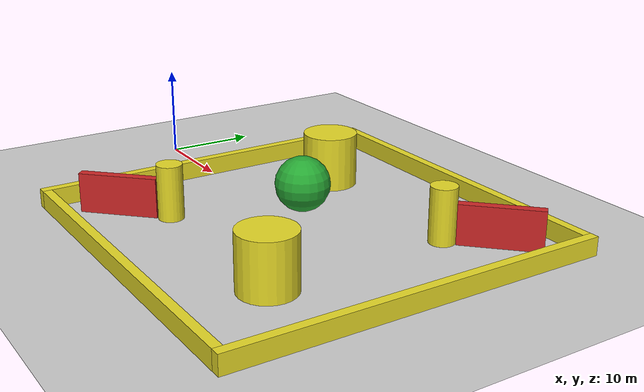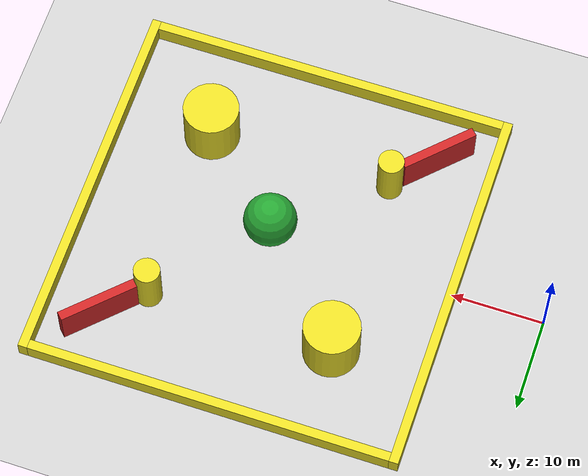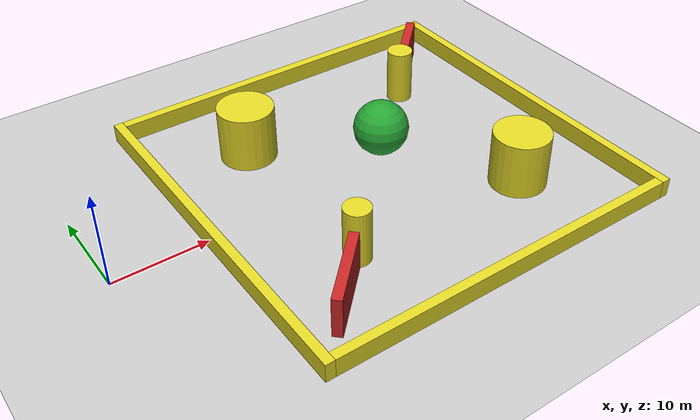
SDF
<sdf version="1.7">
 <world name="default">
  <light name="sun" type="directional">
   <pose>0 0 10 0 -0 0</pose>
   <diffuse>0.8 0.8 0.8 1</diffuse>
   <specular>0.1 0.1 0.1 1</specular>
   <attenuation>
    <range>1000</range>
    <constant>0.9</constant>
    <linear>0.01</linear>
    <quadratic>0.001</quadratic>
   </attenuation>
   <direction>-0.5 0.5 -1</direction>
   <spot><inner_angle>0</inner_angle><outer_angle>0</outer_angle><falloff>0</falloff></spot>
  </light>
  <model name="ground_plane">
   <static>1</static>
   <link name="link">
    <collision name="collision">
     <geometry><plane><normal>0 0 1</normal><size>300 300</size></plane></geometry>
     <surface><friction><ode><mu>100</mu><mu2>50</mu2></ode></friction></surface>
    </collision>
    <visual name="visual">
     <cast_shadows>0</cast_shadows>
     <geometry><plane><normal>0 0 1</normal><size>300 300</size></plane></geometry>
     <material>
      <script><uri>file://media/materials/scripts/gazebo.material</uri><name>Gazebo/Grey</name></script>
     </material>
    </visual>
   </link>
  </model>
  <gravity>0 0 -9.8</gravity>
  <magnetic_field>6e-06 2.3e-05 -4.2e-05</magnetic_field>
  <atmosphere type="adiabatic"/>
  <physics name="default_physics" default="0" type="ode">
   <max_step_size>0.001</max_step_size>
   <real_time_factor>1</real_time_factor>
   <real_time_update_rate>1000</real_time_update_rate>
  </physics>
  <scene><ambient>0.4 0.4 0.4 1</ambient><background>0.7 0.7 0.7 1</background><shadows>1</shadows></scene>
  <spherical_coordinates>
   <surface_model>EARTH_WGS84</surface_model>
   <latitude_deg>0</latitude_deg>
   <longitude_deg>0</longitude_deg>
   <elevation>0</elevation>
   <heading_deg>0</heading_deg>
  </spherical_coordinates>
  <model name="unit_box_0">
   <static>1</static>
   <pose>10 0 1 0 -0 0</pose>
   <link name="link">
    <inertial>
     <mass>1</mass>
     <inertia>
      <ixx>0.166667</ixx>
      <ixy>0</ixy>
      <ixz>0</ixz>
      <iyy>0.166667</iyy>
      <iyz>0</iyz>
      <izz>0.166667</izz>
     </inertia>
    </inertial>
    <collision name="collision"><geometry><box><size>1 41 2</size></box></geometry></collision>
    <visual name="visual">
     <geometry><box><size>1 41 2</size></box></geometry>
     <material>
      <script><name>Gazebo/Yellow</name><uri>file://media/materials/scripts/gazebo.material</uri></script>
     </material>
    </visual>
   </link>
  </model>
  <model name="unit_box_1">
   <static>1</static>
   <pose>30 -20 1 0 -0 0</pose>
   <link name="link">
    <inertial>
     <mass>1</mass>
     <inertia>
      <ixx>0.166667</ixx>
      <ixy>0</ixy>
      <ixz>0</ixz>
      <iyy>0.166667</iyy>
      <iyz>0</iyz>
      <izz>0.166667</izz>
     </inertia>
    </inertial>
    <collision name="collision"><geometry><box><size>39 1 2</size></box></geometry></collision>
    <visual name="visual">
     <geometry><box><size>39 1 2</size></box></geometry>
     <material>
      <script><name>Gazebo/Yellow</name><uri>file://media/materials/scripts/gazebo.material</uri></script>
     </material>
    </visual>
   </link>
  </model>
  <model name="unit_box_2">
   <static>1</static>
   <pose>50 0 1 0 -0 0</pose>
   <link name="link">
    <inertial>
     <mass>1</mass>
     <inertia>
      <ixx>0.166667</ixx>
      <ixy>0</ixy>
      <ixz>0</ixz>
      <iyy>0.166667</iyy>
      <iyz>0</iyz>
      <izz>0.166667</izz>
     </inertia>
    </inertial>
    <collision name="collision"><geometry><box><size>1 41 2</size></box></geometry></collision>
    <visual name="visual">
     <geometry><box><size>1 41 2</size></box></geometry>
     <material>
      <script><name>Gazebo/Yellow</name><uri>file://media/materials/scripts/gazebo.material</uri></script>
     </material>
    </visual>
   </link>
  </model>
  <model name="unit_box_3">
   <static>1</static>
   <pose>30 20 1 0 -0 0</pose>
   <link name="link">
    <inertial>
     <mass>1</mass>
     <inertia>
      <ixx>0.166667</ixx>
      <ixy>0</ixy>
      <ixz>0</ixz>
      <iyy>0.166667</iyy>
      <iyz>0</iyz>
      <izz>0.166667</izz>
     </inertia>
    </inertial>
    <collision name="collision"><geometry><box><size>39 1 2</size></box></geometry></collision>
    <visual name="visual">
     <geometry><box><size>39 1 2</size></box></geometry>
     <material>
      <script><name>Gazebo/Yellow</name><uri>file://media/materials/scripts/gazebo.material</uri></script>
     </material>
    </visual>
   </link>
  </model>
  <model name="unit_cylinder_0">
   <static>1</static>
   <pose>20 -10 3 0 -0 0</pose>
   <link name="link">
    <inertial>
     <mass>1</mass>
     <inertia><ixx>0.145833</ixx><ixy>0</ixy><ixz>0</ixz><iyy>0.145833</iyy><iyz>0</iyz><izz>0.125</izz></inertia>
    </inertial>
    <collision name="collision">
     <geometry><cylinder><radius>1.38756</radius><length>6</length></cylinder></geometry>
    </collision>
    <visual name="visual">
     <geometry><cylinder><radius>1.38756</radius><length>6</length></cylinder></geometry>
     <material>
      <script><name>Gazebo/Yellow</name><uri>file://media/materials/scripts/gazebo.material</uri></script>
     </material>
    </visual>
   </link>
  </model>
  <model name="unit_cylinder_1">
   <static>1</static>
   <pose>40 -10 3 0 -0 0</pose>
   <link name="link">
    <inertial>
     <mass>1</mass>
     <inertia><ixx>0.145833</ixx><ixy>0</ixy><ixz>0</ixz><iyy>0.145833</iyy><iyz>0</iyz><izz>0.125</izz></inertia>
    </inertial>
    <collision name="collision">
     <geometry><cylinder><radius>3</radius><length>6</length></cylinder></geometry>
    </collision>
    <visual name="visual">
     <geometry><cylinder><radius>3</radius><length>6</length></cylinder></geometry>
     <material>
      <script><name>Gazebo/Yellow</name><uri>file://media/materials/scripts/gazebo.material</uri></script>
     </material>
    </visual>
   </link>
  </model>
  <model name="unit_cylinder_2">
   <static>1</static>
   <pose>40 10 3 0 -0 0</pose>
   <link name="link">
    <inertial>
     <mass>1</mass>
     <inertia><ixx>0.145833</ixx><ixy>0</ixy><ixz>0</ixz><iyy>0.145833</iyy><iyz>0</iyz><izz>0.125</izz></inertia>
    </inertial>
    <collision name="collision">
     <geometry><cylinder><radius>1.40594</radius><length>6</length></cylinder></geometry>
    </collision>
    <visual name="visual">
     <geometry><cylinder><radius>1.40594</radius><length>6</length></cylinder></geometry>
     <material>
      <script><name>Gazebo/Yellow</name><uri>file://media/materials/scripts/gazebo.material</uri></script>
     </material>
    </visual>
   </link>
  </model>
  <model name="unit_cylinder_3">
   <static>1</static>
   <pose>20 10 3 0 -0 0</pose>
   <link name="link">
    <inertial>
     <mass>1</mass>
     <inertia><ixx>0.145833</ixx><ixy>0</ixy><ixz>0</ixz><iyy>0.145833</iyy><iyz>0</iyz><izz>0.125</izz></inertia>
    </inertial>
    <collision name="collision">
     <geometry><cylinder><radius>3</radius><length>6</length></cylinder></geometry>
    </collision>
    <visual name="visual">
     <geometry><cylinder><radius>3</radius><length>6</length></cylinder></geometry>
     <material>
      <script><name>Gazebo/Yellow</name><uri>file://media/materials/scripts/gazebo.material</uri></script>
     </material>
    </visual>
   </link>
  </model>
  <model name="unit_sphere_0">
   <static>1</static>
   <pose>30 0 5 0 -0 0</pose>
   <link name="link">
    <inertial>
     <mass>1</mass>
     <inertia><ixx>0.1</ixx><ixy>0</ixy><ixz>0</ixz><iyy>0.1</iyy><iyz>0</iyz><izz>0.1</izz></inertia>
    </inertial>
    <collision name="collision"><geometry><sphere><radius>2.83667</radius></sphere></geometry></collision>
    <visual name="visual">
     <geometry><sphere><radius>2.83667</radius></sphere></geometry>
     <material>
      <script><name>Gazebo/Green</name><uri>file://media/materials/scripts/gazebo.material</uri></script>
     </material>
    </visual>
   </link>
  </model>
  <model name="unit_box_4">
   <static>1</static>
   <pose>15.9731 -14.0258 2.15755 0 2e-06 0.791258</pose>
   <link name="link">
    <inertial>
     <mass>1</mass>
     <inertia>
      <ixx>0.166667</ixx>
      <ixy>0</ixy>
      <ixz>0</ixz>
      <iyy>0.166667</iyy>
      <iyz>0</iyz>
      <izz>0.166667</izz>
     </inertia>
    </inertial>
    <collision name="collision"><geometry><box><size>8.54243 1 4.31511</size></box></geometry></collision>
    <visual name="visual">
     <geometry><box><size>8.54243 1 4.31511</size></box></geometry>
     <material>
      <script><name>Gazebo/Red</name><uri>file://media/materials/scripts/gazebo.material</uri></script>
     </material>
    </visual>
   </link>
  </model>
  <model name="unit_box_5">
   <static>1</static>
   <pose>44.0213 14.0139 2.15755 -2e-06 2e-06 0.782829</pose>
   <link name="link">
    <inertial>
     <mass>1</mass>
     <inertia>
      <ixx>0.166667</ixx>
      <ixy>0</ixy>
      <ixz>0</ixz>
      <iyy>0.166667</iyy>
      <iyz>0</iyz>
      <izz>0.166667</izz>
     </inertia>
    </inertial>
    <collision name="collision"><geometry><box><size>8.54244 1 4.31511</size></box></geometry></collision>
    <visual name="visual">
     <geometry><box><size>8.54244 1 4.31511</size></box></geometry>
     <material>
      <script><name>Gazebo/Red</name><uri>file://media/materials/scripts/gazebo.material</uri></script>
     </material>
    </visual>
   </link>
  </model>
 </world>
</sdf>
